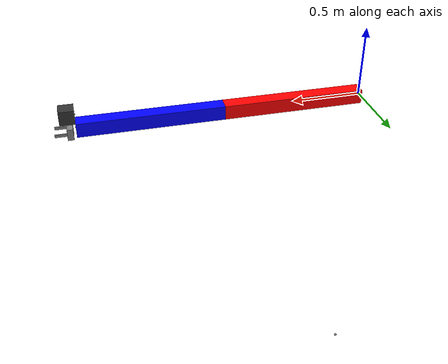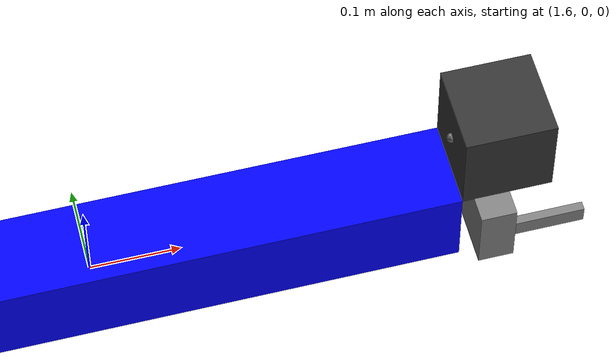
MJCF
<mujoco model="scene">
  <include file="../robot/3d_lidar_robot.xml"/>

  <statistic center="0.4 0 0.4" extent="1"/>

  <visual>
    <headlight diffuse="0.6 0.6 0.6" ambient="0.1 0.1 0.1" specular="0 0 0"/>
    <rgba haze="0.15 0.25 0.35 1"/>
    <global azimuth="120" elevation="-20"/>
  </visual>

  <asset>
    <texture type="skybox" builtin="gradient" rgb1="0.3 0.5 0.7" rgb2="0 0 0" width="512" height="3072"/>
    <texture type="2d" name="groundplane" builtin="checker" mark="edge" rgb1="0.2 0.3 0.4" rgb2="0.1 0.2 0.3"
      markrgb="0.8 0.8 0.8" width="300" height="300"/>
    <material name="groundplane" texture="groundplane" texuniform="true" texrepeat="5 5"/>
  </asset>

  <worldbody>
    <light pos="0 0 1.5" dir="0 0 -1" directional="true"/>
  </worldbody>
</mujoco>

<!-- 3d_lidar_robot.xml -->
<mujoco model="two_dof_robot">
  <compiler angle="radian" meshdir="assets/" texturedir="assets/"/>

  <extension>
  <plugin plugin="mujoco.plugin.lidar">
      <instance name="hokuyo">
          <config key="resolution" value="24 1"/>
          <config key="azimuth_range" value="-0.3 0.3"/>
          <config key="elevation_range" value="0.1 0.1"/>
          <config key="max_range" value="10.0"/>
      </instance>
  </plugin>
</extension>

<sensor>
  <plugin name="front_lidar" instance="hokuyo" objtype="site" objname="lidar_sensor_frame"/>
</sensor>
  <worldbody>
    <body name="upperarm">
      <inertial pos="0.5 0 0" quat="0.5 0.5 0.5 0.5" mass="27" diaginertia="0.225 0.225 0.0225"/>
      <joint name="joint1" pos="0 0 0" axis="0 1 0" range="-3.14 3.14" actuatorfrcrange="-1000 1000" frictionloss="1.0" damping="2.0"/>
      <body name="forearm" pos="1 0 0" gravcomp="1.0">
        <inertial pos="0.509818 0 -0.000363636" quat="0.49615 0.503821 0.503821 0.49615" mass="27.5" diaginertia="0.369345 0.36923 0.023615"/>
        <joint name="joint2" pos="0 0 0" axis="0 1 0" range="-3.14 3.14" actuatorfrcrange="-1000 1000"/>
        <body name="gripper_left_finger" pos="1.04 0.05 -0.02" quat="0.707105 0 0.707108 0">
          <inertial pos="0 0 0.05" mass="0.1" diaginertia="0.0001 0.0001 1e-05"/>
          <joint name="gripper_left_finger_joint" pos="0 0 0" axis="0 1 0" type="slide" range="-0.045 0.005" actuatorfrcrange="-50 50"/>
          <geom size="0.01 0.005 0.05" pos="0 0 0.05" type="box" class="collision"/>
          <geom size="0.01 0.005 0.05" pos="0 0 0.05" type="box" class="visual"/>
          <site name="gripper_left_finger" pos="0 0 0" quat="1.0 0 0 0"/>
        </body>
        <body name="gripper_right_finger" pos="1.04 -0.05 -0.02" quat="0.707105 0 0.707108 0">
          <inertial pos="0 0 0.05" mass="0.1" diaginertia="0.0001 0.0001 1e-05"/>
          <joint name="gripper_right_finger_joint" pos="0 0 0" axis="0 1 0" type="slide" range="-0.005 0.045" actuatorfrcrange="-50 50"/>
          <geom size="0.01 0.005 0.05" pos="0 0 0.05" type="box" class="collision"/>
          <geom size="0.01 0.005 0.05" pos="0 0 0.05" type="box" class="visual"/>
          <site name="gripper_right_finger" pos="0 0 0" quat="1.0 0 0 0"/>
        </body>
        <geom size="0.5 0.05 0.05" pos="0.5 0 0" type="box" class="collision"/>
        <geom size="0.5 0.05 0.05" pos="0.5 0 0" type="box" rgba="0 0 1 1" class="visual"/>
        <geom size="0.04 0.06 0.02" pos="1.04 0 -0.02" quat="0.707105 0 0.707108 0" type="box" class="collision"/>
        <geom size="0.04 0.06 0.02" pos="1.04 0 -0.02" quat="0.707105 0 0.707108 0" type="box" class="visual"/>
        <geom size="0.05 0.05 0.05" pos="1.05 0 0.1" type="box" class="collision"/>
        <geom size="0.05 0.05 0.05" pos="1.05 0 0.1" type="box" rgba="0.2 0.2 0.2 1" class="visual"/>
        <site name="forearm" pos="0 0 0" quat="1.0 0 0 0"/>
        <site name="ee_link" pos="1.0 0 0" quat="1.0 0 0 0"/>
        <site name="gripper_base" pos="1.04 0 -0.02" quat="0.7071054825112363 0 0.7071080798594737 0"/>
        <site name="camera_link" pos="1.05 0 0.1" quat="1.0 0 0 0"/>
        <site name="camera_color_frame" pos="1.0 0 0.1" quat="1.0 0 0 0"/>
        <site name="camera_color_optical_frame" pos="1.0 0 0.1" quat="-0.49999816339744824 0.4999999999966268 0.5000018366025517 -0.4999999999966268"/>
        <site name="camera_color_mujoco_frame" pos="1.0 0 0.1" quat="0.5000006633911983 0.4999974999995599 0.49999933659630164 0.5000024999995599"/>
        <camera name="camera" fovy="58" mode="fixed" resolution="640 480" pos="1.0 0 0.1" quat="-0.4999999999966268 -0.49999816339744824 -0.4999999999966268 -0.5000018366025517"/>
      </body>
      <geom size="0.5 0.05 0.05" pos="0.5 0 0" type="box" class="collision"/>
      <geom size="0.5 0.05 0.05" pos="0.5 0 0" type="box" rgba="1 0 0 1" class="visual"/>
      <site name="upperarm" pos="0 0 0" quat="1.0 0 0 0"/>
    </body>
    <site name="world" pos="0 0 0" quat="1.0 0 0 0"/>
    <site name="base" pos="0 0 0" quat="1.0 0 0 0"/>
    <site name="lidar_sensor_frame" pos="1.0 2.0 0" quat="0.7071054825112363 0 0 -0.7071080798594737"/>
  </worldbody>
  <option integrator="implicitfast"/>
  <default>
    <default class="visual">
      <geom group="2" type="mesh" contype="0" conaffinity="0"/>
    </default>
    <default class="collision">
      <geom group="3" type="mesh"/>
    </default>
  </default>
  <actuator>
    <position name="joint1" joint="joint1" kp="25000" dampratio="1.0" ctrlrange="-3.14159 3.14159"/>
    <position name="joint2" joint="joint2" kp="25000" dampratio="1.0" ctrlrange="-3.14159 3.14159"/>
    <position tendon="split" name="gripper_left_finger_joint" kp="1000" dampratio="3.0" ctrlrange="-0.09 0.005"/>
  </actuator>
  <tendon>
    <fixed name="split">
      <joint joint="gripper_left_finger_joint" coef="0.5"/>
      <joint joint="gripper_right_finger_joint" coef="-0.5"/>
    </fixed>
  </tendon>
  <equality>
    <joint joint1="gripper_left_finger_joint" joint2="gripper_right_finger_joint" polycoef="0 -1 0 0 0" solimp="0.95 0.99 0.001" solref="0.005 1"/>
  </equality>
  <keyframe>
    <key name="start_90" time="422.274" qpos="1.57 -1.57 -0.02 0.02" qvel="0 0 0 0" ctrl="1.57 -1.57 -0.02"/>
  </keyframe>
</mujoco>
